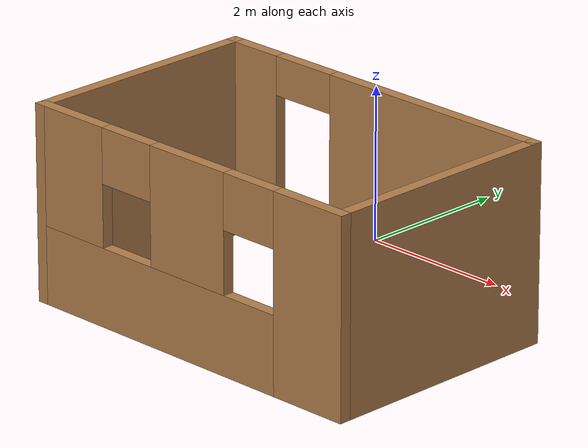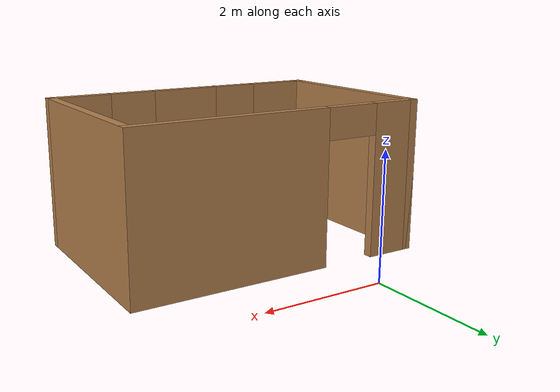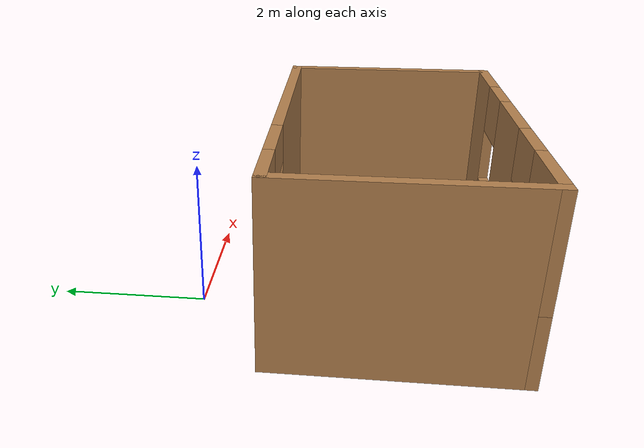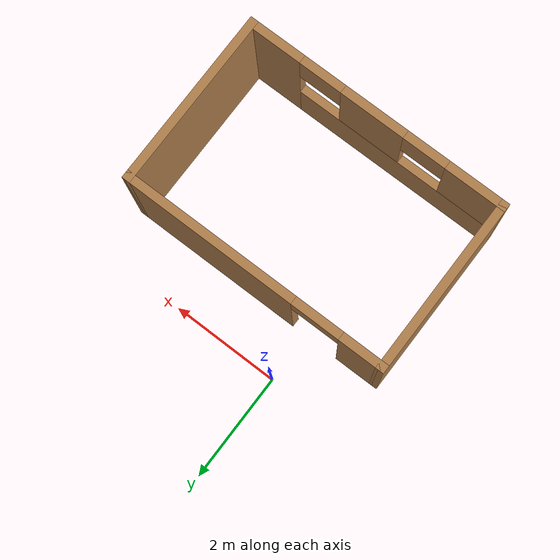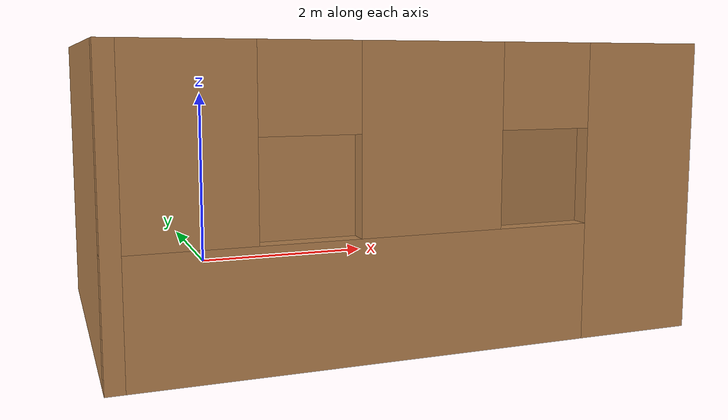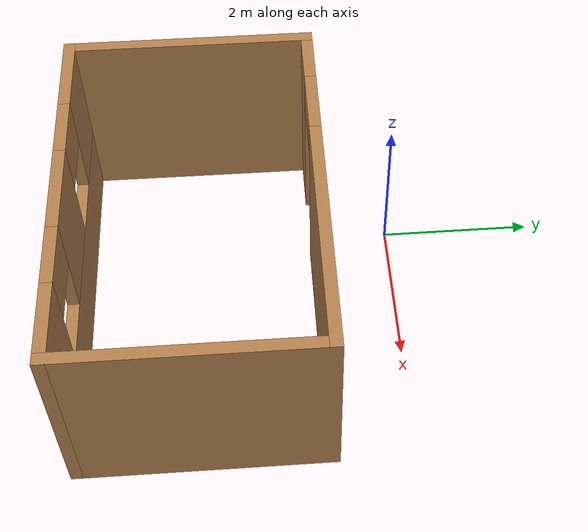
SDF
<?xml version='1.0'?>
<sdf version='1.7'>
  <model name='dd'>
    <pose>1.025 -2.0875 0 0 -0 0</pose>
    <link name='Wall_0'>
      <collision name='Wall_0_Collision'>
        <geometry>
          <box>
            <size>3.25 0.15 2.5</size>
          </box>
        </geometry>
        <pose>0 0 1.25 0 -0 0</pose>
      </collision>
      <visual name='Wall_0_Visual'>
        <pose>0 0 1.25 0 -0 0</pose>
        <geometry>
          <box>
            <size>3.25 0.15 2.5</size>
          </box>
        </geometry>
        <material>
          <script>
            <uri>file://media/materials/scripts/gazebo.material</uri>
            <name>Gazebo/Wood</name>
          </script>
          <ambient>1 1 1 1</ambient>
        </material>
        <meta>
          <layer>0</layer>
        </meta>
      </visual>
      <pose>-2.425 -0.4625 0 0 -0 1.5708</pose>
    </link>
    <link name='Wall_1'>
      <pose>-0 1.0875 0 0 -0 0</pose>
      <visual name='Wall_1_Visual_0'>
        <pose>-2.0775 0 1.25 0 -0 0</pose>
        <geometry>
          <box>
            <size>0.845 0.15 2.5</size>
          </box>
        </geometry>
        <material>
          <script>
            <uri>file://media/materials/scripts/gazebo.material</uri>
            <name>Gazebo/Wood</name>
          </script>
          <ambient>1 1 1 1</ambient>
        </material>
        <meta>
          <layer>0</layer>
        </meta>
      </visual>
      <collision name='Wall_1_Collision_0'>
        <geometry>
          <box>
            <size>0.845 0.15 2.5</size>
          </box>
        </geometry>
        <pose>-2.0775 0 1.25 0 -0 0</pose>
      </collision>
      <visual name='Wall_1_Visual_1'>
        <pose>0.8725 0 1.25 0 -0 0</pose>
        <geometry>
          <box>
            <size>3.255 0.15 2.5</size>
          </box>
        </geometry>
        <material>
          <script>
            <uri>file://media/materials/scripts/gazebo.material</uri>
            <name>Gazebo/Wood</name>
          </script>
          <ambient>1 1 1 1</ambient>
        </material>
        <meta>
          <layer>0</layer>
        </meta>
      </visual>
      <collision name='Wall_1_Collision_1'>
        <geometry>
          <box>
            <size>3.255 0.15 2.5</size>
          </box>
        </geometry>
        <pose>0.8725 0 1.25 0 -0 0</pose>
      </collision>
      <visual name='Wall_1_Visual_2'>
        <pose>-1.205 0 2.25 0 -0 0</pose>
        <geometry>
          <box>
            <size>0.9 0.15 0.5</size>
          </box>
        </geometry>
        <material>
          <script>
            <uri>file://media/materials/scripts/gazebo.material</uri>
            <name>Gazebo/Wood</name>
          </script>
          <ambient>1 1 1 1</ambient>
        </material>
        <meta>
          <layer>0</layer>
        </meta>
      </visual>
      <collision name='Wall_1_Collision_2'>
        <geometry>
          <box>
            <size>0.9 0.15 0.5</size>
          </box>
        </geometry>
        <pose>-1.205 0 2.25 0 -0 0</pose>
      </collision>
    </link>
    <link name='Wall_2'>
      <collision name='Wall_2_Collision'>
        <geometry>
          <box>
            <size>3.25 0.15 2.5</size>
          </box>
        </geometry>
        <pose>0 0 1.25 0 -0 0</pose>
      </collision>
      <visual name='Wall_2_Visual'>
        <pose>0 0 1.25 0 -0 0</pose>
        <geometry>
          <box>
            <size>3.25 0.15 2.5</size>
          </box>
        </geometry>
        <material>
          <script>
            <uri>file://media/materials/scripts/gazebo.material</uri>
            <name>Gazebo/Wood</name>
          </script>
          <ambient>1 1 1 1</ambient>
        </material>
        <meta>
          <layer>0</layer>
        </meta>
      </visual>
      <pose>2.425 -0.4625 0 0 -0 -1.5708</pose>
    </link>
    <link name='Wall_3'>
      <pose>-0 -2.0125 0 0 -0 3.14159</pose>
      <visual name='Wall_3_Visual_0'>
        <pose>-1.9675 0 1.25 0 -0 0</pose>
        <geometry>
          <box>
            <size>1.065 0.15 2.5</size>
          </box>
        </geometry>
        <material>
          <script>
            <uri>file://media/materials/scripts/gazebo.material</uri>
            <name>Gazebo/Wood</name>
          </script>
          <ambient>1 1 1 1</ambient>
        </material>
        <meta>
          <layer>0</layer>
        </meta>
      </visual>
      <collision name='Wall_3_Collision_0'>
        <geometry>
          <box>
            <size>1.065 0.15 2.5</size>
          </box>
        </geometry>
        <pose>-1.9675 0 1.25 0 -0 0</pose>
      </collision>
      <visual name='Wall_3_Visual_1'>
        <pose>0.5325 0 0.5 0 -0 0</pose>
        <geometry>
          <box>
            <size>3.935 0.15 1</size>
          </box>
        </geometry>
        <material>
          <script>
            <uri>file://media/materials/scripts/gazebo.material</uri>
            <name>Gazebo/Wood</name>
          </script>
          <ambient>1 1 1 1</ambient>
        </material>
        <meta>
          <layer>0</layer>
        </meta>
      </visual>
      <collision name='Wall_3_Collision_1'>
        <geometry>
          <box>
            <size>3.935 0.15 1</size>
          </box>
        </geometry>
        <pose>0.5325 0 0.5 0 -0 0</pose>
      </collision>
      <visual name='Wall_3_Visual_2'>
        <pose>-0.03367 0 1.75 0 -0 0</pose>
        <geometry>
          <box>
            <size>1.20266 0.15 1.5</size>
          </box>
        </geometry>
        <material>
          <script>
            <uri>file://media/materials/scripts/gazebo.material</uri>
            <name>Gazebo/Wood</name>
          </script>
          <ambient>1 1 1 1</ambient>
        </material>
        <meta>
          <layer>0</layer>
        </meta>
      </visual>
      <collision name='Wall_3_Collision_2'>
        <geometry>
          <box>
            <size>1.20266 0.15 1.5</size>
          </box>
        </geometry>
        <pose>-0.03367 0 1.75 0 -0 0</pose>
      </collision>
      <visual name='Wall_3_Visual_3'>
        <pose>1.93383 0 1.75 0 -0 0</pose>
        <geometry>
          <box>
            <size>1.13234 0.15 1.5</size>
          </box>
        </geometry>
        <material>
          <script>
            <uri>file://media/materials/scripts/gazebo.material</uri>
            <name>Gazebo/Wood</name>
          </script>
          <ambient>1 1 1 1</ambient>
        </material>
        <meta>
          <layer>0</layer>
        </meta>
      </visual>
      <collision name='Wall_3_Collision_3'>
        <geometry>
          <box>
            <size>1.13234 0.15 1.5</size>
          </box>
        </geometry>
        <pose>1.93383 0 1.75 0 -0 0</pose>
      </collision>
      <visual name='Wall_3_Visual_4'>
        <pose>-1.035 0 2.15 0 -0 0</pose>
        <geometry>
          <box>
            <size>0.8 0.15 0.7</size>
          </box>
        </geometry>
        <material>
          <script>
            <uri>file://media/materials/scripts/gazebo.material</uri>
            <name>Gazebo/Wood</name>
          </script>
          <ambient>1 1 1 1</ambient>
        </material>
        <meta>
          <layer>0</layer>
        </meta>
      </visual>
      <collision name='Wall_3_Collision_4'>
        <geometry>
          <box>
            <size>0.8 0.15 0.7</size>
          </box>
        </geometry>
        <pose>-1.035 0 2.15 0 -0 0</pose>
      </collision>
      <visual name='Wall_3_Visual_5'>
        <pose>0.96766 0 2.15 0 -0 0</pose>
        <geometry>
          <box>
            <size>0.8 0.15 0.7</size>
          </box>
        </geometry>
        <material>
          <script>
            <uri>file://media/materials/scripts/gazebo.material</uri>
            <name>Gazebo/Wood</name>
          </script>
          <ambient>1 1 1 1</ambient>
        </material>
        <meta>
          <layer>0</layer>
        </meta>
      </visual>
      <collision name='Wall_3_Collision_5'>
        <geometry>
          <box>
            <size>0.8 0.15 0.7</size>
          </box>
        </geometry>
        <pose>0.96766 0 2.15 0 -0 0</pose>
      </collision>
    </link>
    <static>1</static>
  </model>
</sdf>
